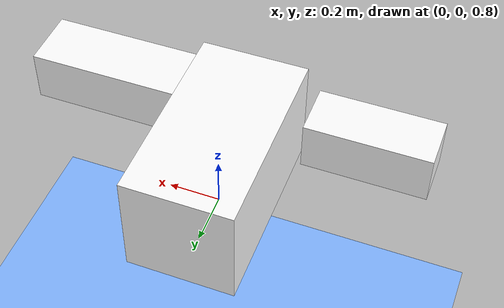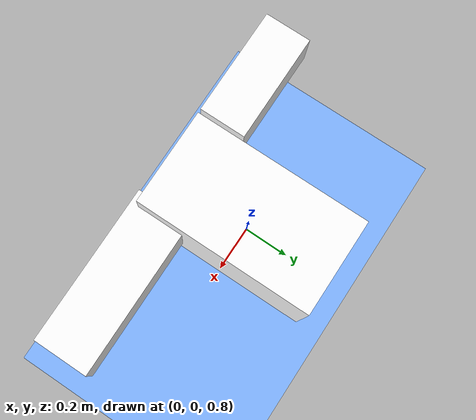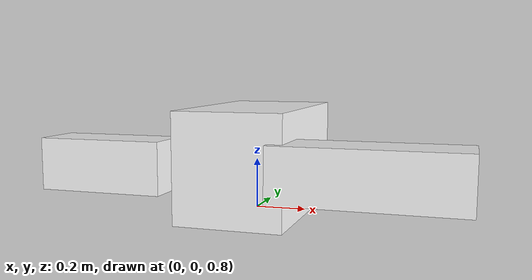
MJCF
<mujoco>
    <worldbody>
        <light diffuse=".5 .5 .5" pos="0 0 2" dir="0 -1 0" />
        <geom type="plane" size="10 10 0.1" rgba="0.5 0.7 1 1" />

        <body name="flappybird" pos="0 0 1" euler="0 0 0">
            <joint type="free" axis="0 0 0" pos="0 0 0" />
            <body name="body" pos="0 0 0" euler="0 0 0">
                <geom type="box" size="0.20924165001957276 0.38386257092539267 0.21277872726143304" rgba="1 1 1 1" mass="0.01037095495512702" />
            </body>

            <body name="wing1" pos=".5 -.3 0" euler="0 -90 0">
                <joint name="joint1" type="hinge" axis="0 1 0" pos="0 0 .25" range="-45 45" />
                <geom type="box" size="0.10405603478804636 0.12002851164298295 0.3484928384173954" rgba="1 1 1 1" mass="0.6913371326867724" />
            </body>

            <body name="wing2" pos="-.5 -.3 0" euler="0 90 0">
                <joint name="joint2" type="hinge" axis="0 1 0" pos="0 0 .25" range="-45 45" />
                <geom type="box" size="0.1 0.10399433591378715 0.24461379115407075" rgba="1 1 1 1" mass="0.47561780075677634" />
            </body>

        </body>
    </worldbody>

    <actuator>
        <motor joint="joint1" name="m1" gear="12.337098961824797" ctrllimited="true" ctrlrange="-5 5" />
        <motor joint="joint2" name="m2" gear="12.900763277085732" ctrllimited="true" ctrlrange="-5 5" />

</actuator>

</mujoco>
